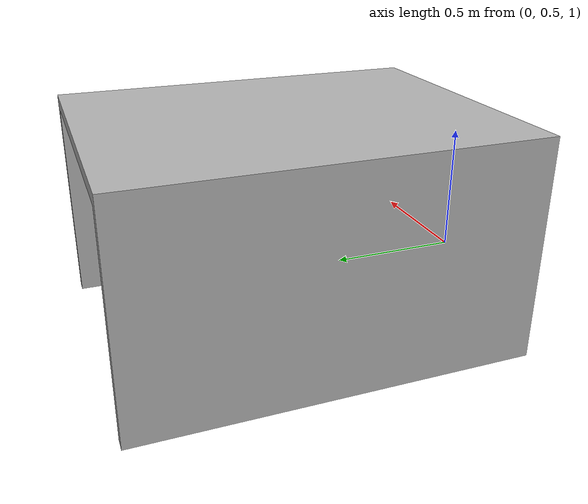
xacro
<?xml version="1.0"?>
<robot name="scanner" xmlns:xacro="http://ros.org/wiki/xacro">

  <link name="base_link">
    <inertial>
      <origin xyz="0.0 1.25 1.373148148148148" rpy="0 0 0"/>
      <mass value="1589.6249999999998"/>
      <inertia ixx="417.74947" iyy="444.83197" izz="623.191875" ixy="0.0" iyz="0.0" ixz="0.0"/>
    </inertial>
    <visual>
      <origin xyz="0 0 0" rpy="0 0 0"/>
      <geometry>
        <mesh filename="package://conveyor_belt/meshes/elements/scanner_base_link.stl" scale="0.001 0.001 0.001"/>
      </geometry>
      <material name="silver">
        <color rgba="0.7 0.7 0.7 1.0"/>
      </material>
    </visual>
    <collision>
      <origin xyz="0 0 0" rpy="0 0 0"/>
      <geometry>
        <mesh filename="package://conveyor_belt/meshes/elements/scanner_base_link.stl" scale="0.001 0.001 0.001"/>
      </geometry>
    </collision>
  </link>

  <gazebo>
    <static>true</static>
  </gazebo>

</robot>
